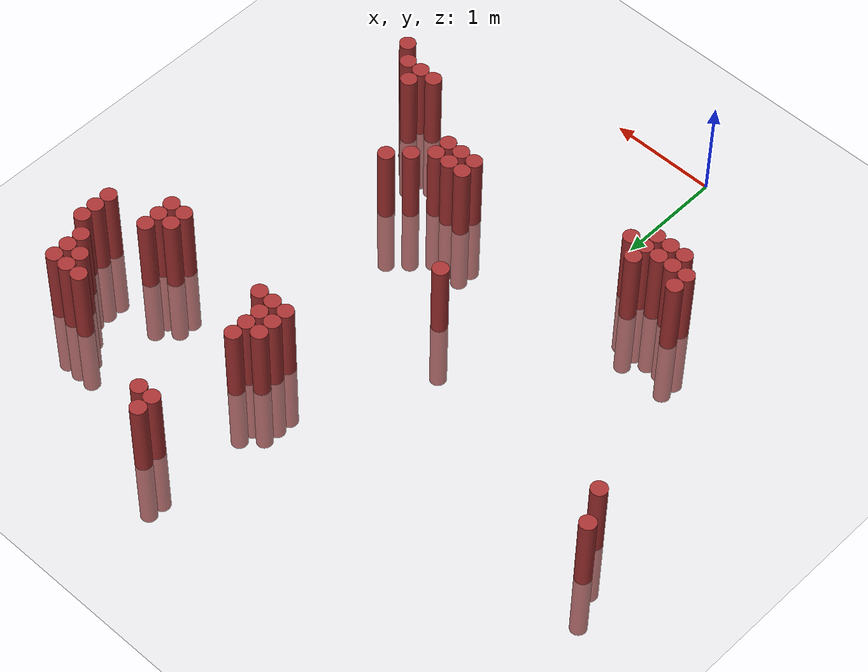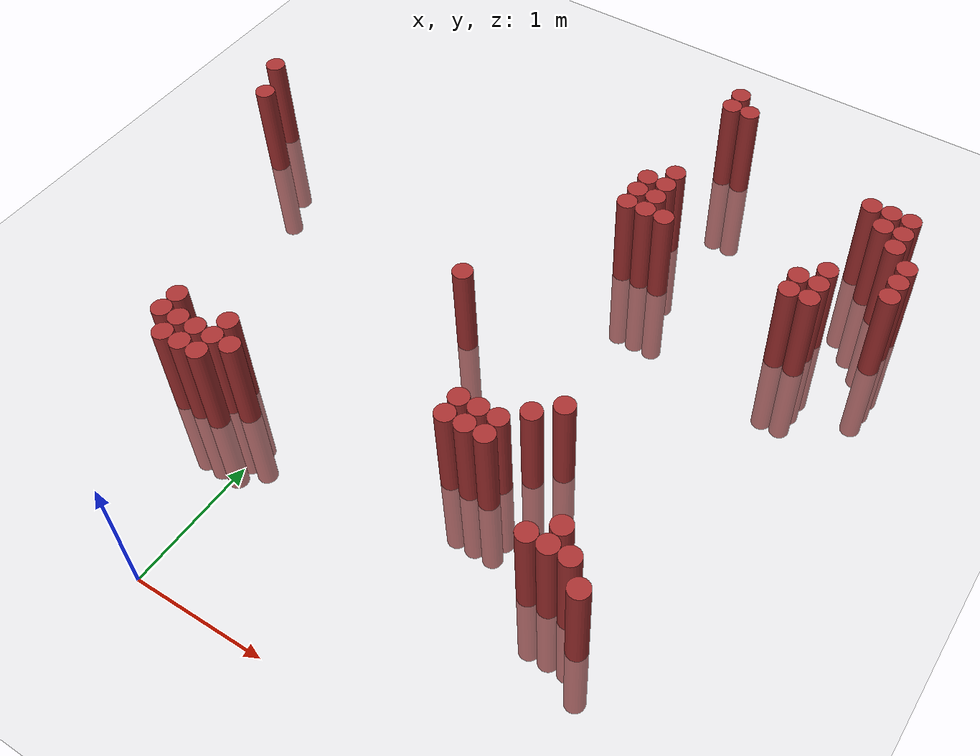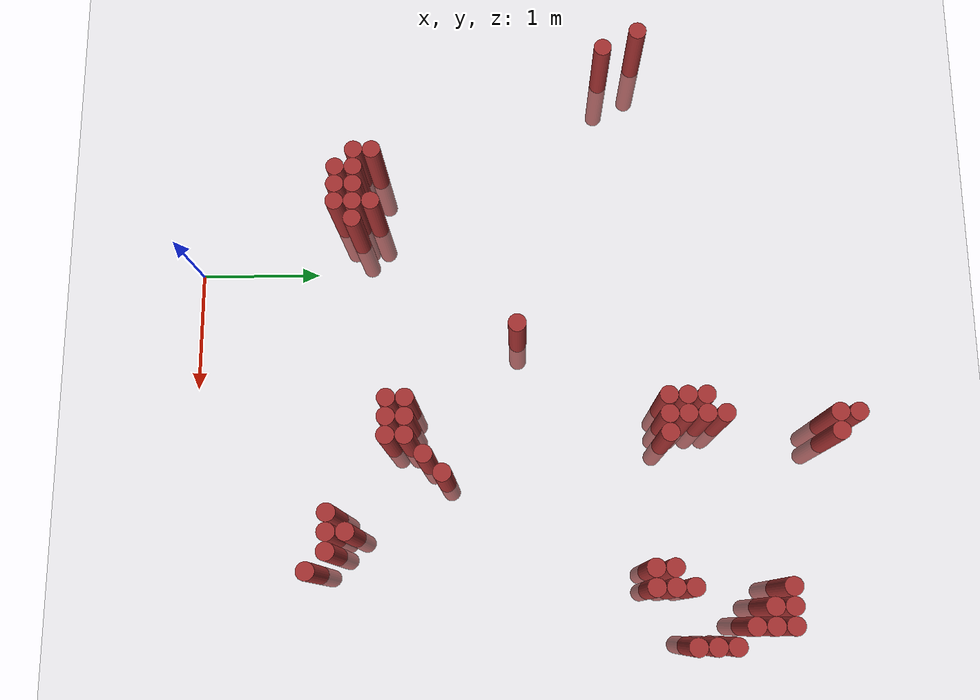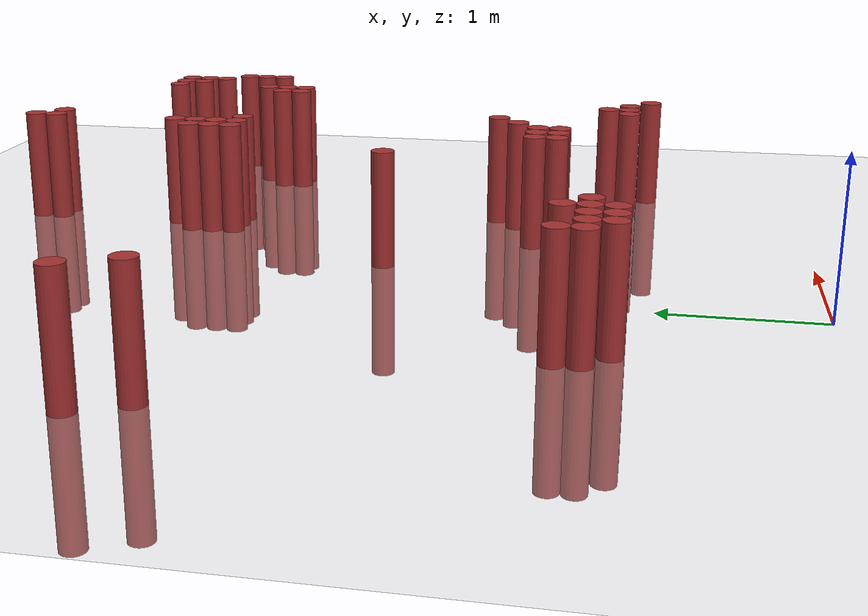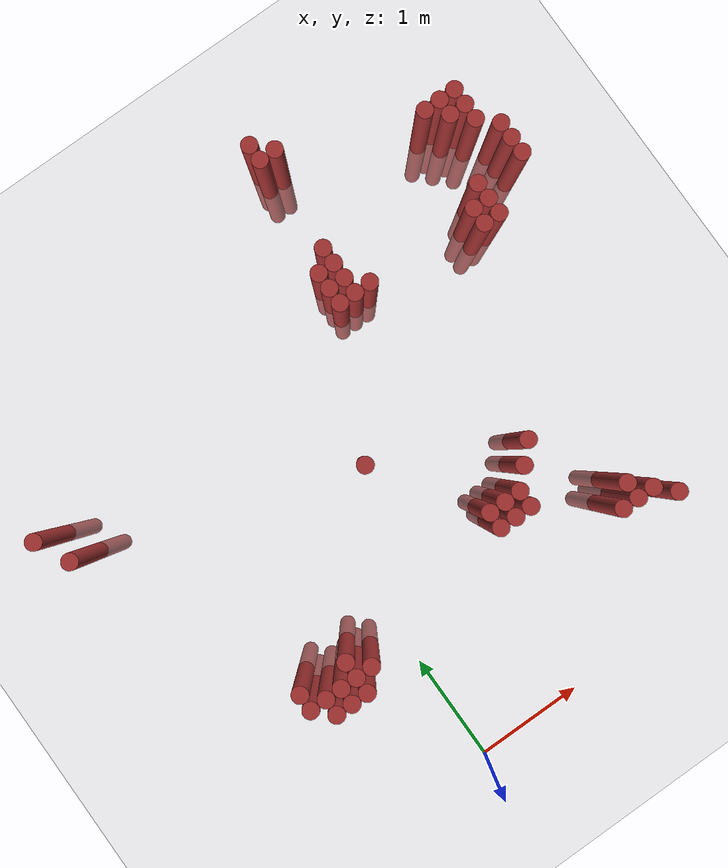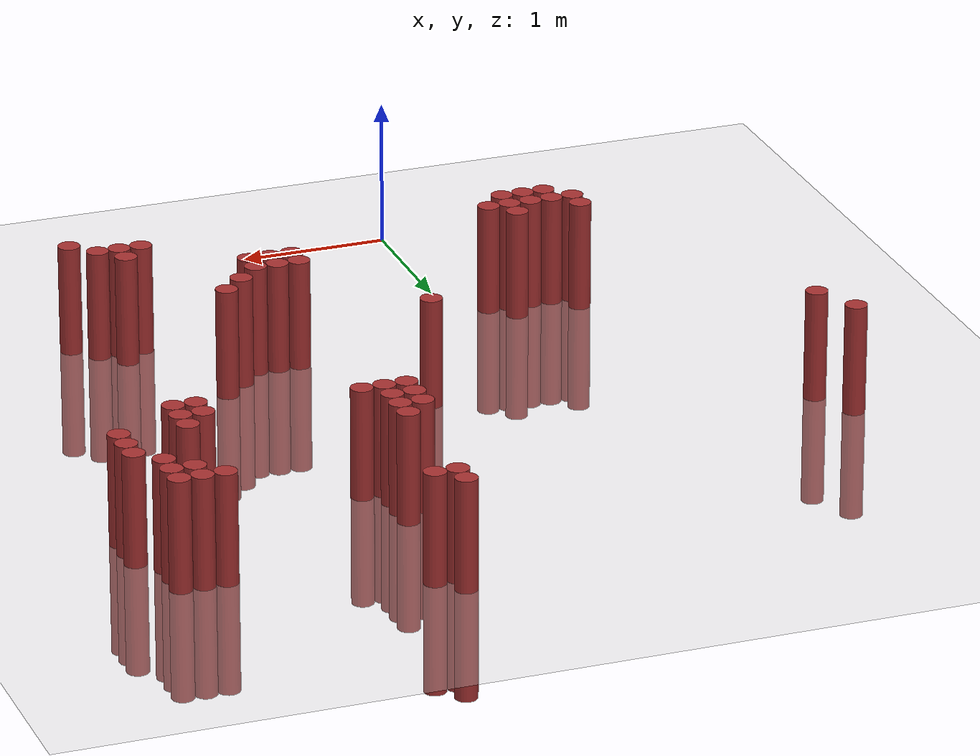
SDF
<sdf version="1.6">
 <world name="default">
  <model name="ground_plane">
   <static>1</static>
   <link name="link">
    <collision name="collision">
     <geometry><plane><normal>0 0 1</normal><size>100 100</size></plane></geometry>
     <surface><friction><ode><mu>100</mu><mu2>50</mu2></ode></friction></surface>
    </collision>
    <visual name="visual">
     <cast_shadows>0</cast_shadows>
     <geometry><plane><normal>0 0 1</normal><size>100 100</size></plane></geometry>
     <material>
      <script><uri>file://media/materials/scripts/gazebo.material</uri><name>Gazebo/Grey</name></script>
     </material>
    </visual>
   </link>
  </model>
  <model name="unit_cylinder_317">
   <static>1</static>
   <pose>-1.925000 3.775000 0.000000 0.000000 0.000000 0.000000</pose>
   <link name="link">
    <inertial>
     <mass>1</mass>
     <inertia><ixx>0.145833</ixx><ixy>0</ixy><ixz>0</ixz><iyy>0.145833</iyy><iyz>0</iyz><izz>0.125</izz></inertia>
    </inertial>
    <collision name="collision">
     <geometry><cylinder><radius>0.075000</radius><length>1.5</length></cylinder></geometry>
    </collision>
    <visual name="visual">
     <geometry><cylinder><radius>0.075000</radius><length>1.5</length></cylinder></geometry>
     <material>
      <ambient>0.648000 0.192000 0.192000 1</ambient>
      <diffuse>0.648000 0.192000 0.192000 1</diffuse>
     </material>
     <material>
      <script><name>Gazebo/Grey</name><uri>file://media/materials/scripts/gazebo.material</uri></script>
     </material>
    </visual>
   </link>
  </model>
  <model name="unit_cylinder_320">
   <static>1</static>
   <pose>-1.775000 3.475000 0.000000 0.000000 0.000000 0.000000</pose>
   <link name="link">
    <inertial>
     <mass>1</mass>
     <inertia><ixx>0.145833</ixx><ixy>0</ixy><ixz>0</ixz><iyy>0.145833</iyy><iyz>0</iyz><izz>0.125</izz></inertia>
    </inertial>
    <collision name="collision">
     <geometry><cylinder><radius>0.075000</radius><length>1.5</length></cylinder></geometry>
    </collision>
    <visual name="visual">
     <geometry><cylinder><radius>0.075000</radius><length>1.5</length></cylinder></geometry>
     <material>
      <ambient>0.648000 0.192000 0.192000 1</ambient>
      <diffuse>0.648000 0.192000 0.192000 1</diffuse>
     </material>
     <material>
      <script><name>Gazebo/Grey</name><uri>file://media/materials/scripts/gazebo.material</uri></script>
     </material>
    </visual>
   </link>
  </model>
  <model name="unit_cylinder_334">
   <static>1</static>
   <pose>-0.875000 1.375000 0.000000 0.000000 0.000000 0.000000</pose>
   <link name="link">
    <inertial>
     <mass>1</mass>
     <inertia><ixx>0.145833</ixx><ixy>0</ixy><ixz>0</ixz><iyy>0.145833</iyy><iyz>0</iyz><izz>0.125</izz></inertia>
    </inertial>
    <collision name="collision">
     <geometry><cylinder><radius>0.075000</radius><length>1.5</length></cylinder></geometry>
    </collision>
    <visual name="visual">
     <geometry><cylinder><radius>0.075000</radius><length>1.5</length></cylinder></geometry>
     <material>
      <ambient>0.648000 0.192000 0.192000 1</ambient>
      <diffuse>0.648000 0.192000 0.192000 1</diffuse>
     </material>
     <material>
      <script><name>Gazebo/Grey</name><uri>file://media/materials/scripts/gazebo.material</uri></script>
     </material>
    </visual>
   </link>
  </model>
  <model name="unit_cylinder_335">
   <static>1</static>
   <pose>-0.875000 1.525000 0.000000 0.000000 0.000000 0.000000</pose>
   <link name="link">
    <inertial>
     <mass>1</mass>
     <inertia><ixx>0.145833</ixx><ixy>0</ixy><ixz>0</ixz><iyy>0.145833</iyy><iyz>0</iyz><izz>0.125</izz></inertia>
    </inertial>
    <collision name="collision">
     <geometry><cylinder><radius>0.075000</radius><length>1.5</length></cylinder></geometry>
    </collision>
    <visual name="visual">
     <geometry><cylinder><radius>0.075000</radius><length>1.5</length></cylinder></geometry>
     <material>
      <ambient>0.648000 0.192000 0.192000 1</ambient>
      <diffuse>0.648000 0.192000 0.192000 1</diffuse>
     </material>
     <material>
      <script><name>Gazebo/Grey</name><uri>file://media/materials/scripts/gazebo.material</uri></script>
     </material>
    </visual>
   </link>
  </model>
  <model name="unit_cylinder_340">
   <static>1</static>
   <pose>-0.725000 1.225000 0.000000 0.000000 0.000000 0.000000</pose>
   <link name="link">
    <inertial>
     <mass>1</mass>
     <inertia><ixx>0.145833</ixx><ixy>0</ixy><ixz>0</ixz><iyy>0.145833</iyy><iyz>0</iyz><izz>0.125</izz></inertia>
    </inertial>
    <collision name="collision">
     <geometry><cylinder><radius>0.075000</radius><length>1.5</length></cylinder></geometry>
    </collision>
    <visual name="visual">
     <geometry><cylinder><radius>0.075000</radius><length>1.5</length></cylinder></geometry>
     <material>
      <ambient>0.648000 0.192000 0.192000 1</ambient>
      <diffuse>0.648000 0.192000 0.192000 1</diffuse>
     </material>
     <material>
      <script><name>Gazebo/Grey</name><uri>file://media/materials/scripts/gazebo.material</uri></script>
     </material>
    </visual>
   </link>
  </model>
  <model name="unit_cylinder_341">
   <static>1</static>
   <pose>-0.725000 1.375000 0.000000 0.000000 0.000000 0.000000</pose>
   <link name="link">
    <inertial>
     <mass>1</mass>
     <inertia><ixx>0.145833</ixx><ixy>0</ixy><ixz>0</ixz><iyy>0.145833</iyy><iyz>0</iyz><izz>0.125</izz></inertia>
    </inertial>
    <collision name="collision">
     <geometry><cylinder><radius>0.075000</radius><length>1.5</length></cylinder></geometry>
    </collision>
    <visual name="visual">
     <geometry><cylinder><radius>0.075000</radius><length>1.5</length></cylinder></geometry>
     <material>
      <ambient>0.648000 0.192000 0.192000 1</ambient>
      <diffuse>0.648000 0.192000 0.192000 1</diffuse>
     </material>
     <material>
      <script><name>Gazebo/Grey</name><uri>file://media/materials/scripts/gazebo.material</uri></script>
     </material>
    </visual>
   </link>
  </model>
  <model name="unit_cylinder_345">
   <static>1</static>
   <pose>-0.575000 1.225000 0.000000 0.000000 0.000000 0.000000</pose>
   <link name="link">
    <inertial>
     <mass>1</mass>
     <inertia><ixx>0.145833</ixx><ixy>0</ixy><ixz>0</ixz><iyy>0.145833</iyy><iyz>0</iyz><izz>0.125</izz></inertia>
    </inertial>
    <collision name="collision">
     <geometry><cylinder><radius>0.075000</radius><length>1.5</length></cylinder></geometry>
    </collision>
    <visual name="visual">
     <geometry><cylinder><radius>0.075000</radius><length>1.5</length></cylinder></geometry>
     <material>
      <ambient>0.648000 0.192000 0.192000 1</ambient>
      <diffuse>0.648000 0.192000 0.192000 1</diffuse>
     </material>
     <material>
      <script><name>Gazebo/Grey</name><uri>file://media/materials/scripts/gazebo.material</uri></script>
     </material>
    </visual>
   </link>
  </model>
  <model name="unit_cylinder_346">
   <static>1</static>
   <pose>-0.575000 1.375000 0.000000 0.000000 0.000000 0.000000</pose>
   <link name="link">
    <inertial>
     <mass>1</mass>
     <inertia><ixx>0.145833</ixx><ixy>0</ixy><ixz>0</ixz><iyy>0.145833</iyy><iyz>0</iyz><izz>0.125</izz></inertia>
    </inertial>
    <collision name="collision">
     <geometry><cylinder><radius>0.075000</radius><length>1.5</length></cylinder></geometry>
    </collision>
    <visual name="visual">
     <geometry><cylinder><radius>0.075000</radius><length>1.5</length></cylinder></geometry>
     <material>
      <ambient>0.648000 0.192000 0.192000 1</ambient>
      <diffuse>0.648000 0.192000 0.192000 1</diffuse>
     </material>
     <material>
      <script><name>Gazebo/Grey</name><uri>file://media/materials/scripts/gazebo.material</uri></script>
     </material>
    </visual>
   </link>
  </model>
  <model name="unit_cylinder_349">
   <static>1</static>
   <pose>-0.425000 1.225000 0.000000 0.000000 0.000000 0.000000</pose>
   <link name="link">
    <inertial>
     <mass>1</mass>
     <inertia><ixx>0.145833</ixx><ixy>0</ixy><ixz>0</ixz><iyy>0.145833</iyy><iyz>0</iyz><izz>0.125</izz></inertia>
    </inertial>
    <collision name="collision">
     <geometry><cylinder><radius>0.075000</radius><length>1.5</length></cylinder></geometry>
    </collision>
    <visual name="visual">
     <geometry><cylinder><radius>0.075000</radius><length>1.5</length></cylinder></geometry>
     <material>
      <ambient>0.648000 0.192000 0.192000 1</ambient>
      <diffuse>0.648000 0.192000 0.192000 1</diffuse>
     </material>
     <material>
      <script><name>Gazebo/Grey</name><uri>file://media/materials/scripts/gazebo.material</uri></script>
     </material>
    </visual>
   </link>
  </model>
  <model name="unit_cylinder_350">
   <static>1</static>
   <pose>-0.425000 1.375000 0.000000 0.000000 0.000000 0.000000</pose>
   <link name="link">
    <inertial>
     <mass>1</mass>
     <inertia><ixx>0.145833</ixx><ixy>0</ixy><ixz>0</ixz><iyy>0.145833</iyy><iyz>0</iyz><izz>0.125</izz></inertia>
    </inertial>
    <collision name="collision">
     <geometry><cylinder><radius>0.075000</radius><length>1.5</length></cylinder></geometry>
    </collision>
    <visual name="visual">
     <geometry><cylinder><radius>0.075000</radius><length>1.5</length></cylinder></geometry>
     <material>
      <ambient>0.648000 0.192000 0.192000 1</ambient>
      <diffuse>0.648000 0.192000 0.192000 1</diffuse>
     </material>
     <material>
      <script><name>Gazebo/Grey</name><uri>file://media/materials/scripts/gazebo.material</uri></script>
     </material>
    </visual>
   </link>
  </model>
  <model name="unit_cylinder_351">
   <static>1</static>
   <pose>-0.425000 1.525000 0.000000 0.000000 0.000000 0.000000</pose>
   <link name="link">
    <inertial>
     <mass>1</mass>
     <inertia><ixx>0.145833</ixx><ixy>0</ixy><ixz>0</ixz><iyy>0.145833</iyy><iyz>0</iyz><izz>0.125</izz></inertia>
    </inertial>
    <collision name="collision">
     <geometry><cylinder><radius>0.075000</radius><length>1.5</length></cylinder></geometry>
    </collision>
    <visual name="visual">
     <geometry><cylinder><radius>0.075000</radius><length>1.5</length></cylinder></geometry>
     <material>
      <ambient>0.648000 0.192000 0.192000 1</ambient>
      <diffuse>0.648000 0.192000 0.192000 1</diffuse>
     </material>
     <material>
      <script><name>Gazebo/Grey</name><uri>file://media/materials/scripts/gazebo.material</uri></script>
     </material>
    </visual>
   </link>
  </model>
  <model name="unit_cylinder_352">
   <static>1</static>
   <pose>-0.275000 1.375000 0.000000 0.000000 0.000000 0.000000</pose>
   <link name="link">
    <inertial>
     <mass>1</mass>
     <inertia><ixx>0.145833</ixx><ixy>0</ixy><ixz>0</ixz><iyy>0.145833</iyy><iyz>0</iyz><izz>0.125</izz></inertia>
    </inertial>
    <collision name="collision">
     <geometry><cylinder><radius>0.075000</radius><length>1.5</length></cylinder></geometry>
    </collision>
    <visual name="visual">
     <geometry><cylinder><radius>0.075000</radius><length>1.5</length></cylinder></geometry>
     <material>
      <ambient>0.648000 0.192000 0.192000 1</ambient>
      <diffuse>0.648000 0.192000 0.192000 1</diffuse>
     </material>
     <material>
      <script><name>Gazebo/Grey</name><uri>file://media/materials/scripts/gazebo.material</uri></script>
     </material>
    </visual>
   </link>
  </model>
  <model name="unit_cylinder_355">
   <static>1</static>
   <pose>0.625000 2.725000 0.000000 0.000000 0.000000 0.000000</pose>
   <link name="link">
    <inertial>
     <mass>1</mass>
     <inertia><ixx>0.145833</ixx><ixy>0</ixy><ixz>0</ixz><iyy>0.145833</iyy><iyz>0</iyz><izz>0.125</izz></inertia>
    </inertial>
    <collision name="collision">
     <geometry><cylinder><radius>0.075000</radius><length>1.5</length></cylinder></geometry>
    </collision>
    <visual name="visual">
     <geometry><cylinder><radius>0.075000</radius><length>1.5</length></cylinder></geometry>
     <material>
      <ambient>0.648000 0.192000 0.192000 1</ambient>
      <diffuse>0.648000 0.192000 0.192000 1</diffuse>
     </material>
     <material>
      <script><name>Gazebo/Grey</name><uri>file://media/materials/scripts/gazebo.material</uri></script>
     </material>
    </visual>
   </link>
  </model>
  <model name="unit_cylinder_356">
   <static>1</static>
   <pose>1.225000 1.675000 0.000000 0.000000 0.000000 0.000000</pose>
   <link name="link">
    <inertial>
     <mass>1</mass>
     <inertia><ixx>0.145833</ixx><ixy>0</ixy><ixz>0</ixz><iyy>0.145833</iyy><iyz>0</iyz><izz>0.125</izz></inertia>
    </inertial>
    <collision name="collision">
     <geometry><cylinder><radius>0.075000</radius><length>1.5</length></cylinder></geometry>
    </collision>
    <visual name="visual">
     <geometry><cylinder><radius>0.075000</radius><length>1.5</length></cylinder></geometry>
     <material>
      <ambient>0.648000 0.192000 0.192000 1</ambient>
      <diffuse>0.648000 0.192000 0.192000 1</diffuse>
     </material>
     <material>
      <script><name>Gazebo/Grey</name><uri>file://media/materials/scripts/gazebo.material</uri></script>
     </material>
    </visual>
   </link>
  </model>
  <model name="unit_cylinder_357">
   <static>1</static>
   <pose>1.225000 1.825000 0.000000 0.000000 0.000000 0.000000</pose>
   <link name="link">
    <inertial>
     <mass>1</mass>
     <inertia><ixx>0.145833</ixx><ixy>0</ixy><ixz>0</ixz><iyy>0.145833</iyy><iyz>0</iyz><izz>0.125</izz></inertia>
    </inertial>
    <collision name="collision">
     <geometry><cylinder><radius>0.075000</radius><length>1.5</length></cylinder></geometry>
    </collision>
    <visual name="visual">
     <geometry><cylinder><radius>0.075000</radius><length>1.5</length></cylinder></geometry>
     <material>
      <ambient>0.648000 0.192000 0.192000 1</ambient>
      <diffuse>0.648000 0.192000 0.192000 1</diffuse>
     </material>
     <material>
      <script><name>Gazebo/Grey</name><uri>file://media/materials/scripts/gazebo.material</uri></script>
     </material>
    </visual>
   </link>
  </model>
  <model name="unit_cylinder_358">
   <static>1</static>
   <pose>1.225000 3.925000 0.000000 0.000000 0.000000 0.000000</pose>
   <link name="link">
    <inertial>
     <mass>1</mass>
     <inertia><ixx>0.145833</ixx><ixy>0</ixy><ixz>0</ixz><iyy>0.145833</iyy><iyz>0</iyz><izz>0.125</izz></inertia>
    </inertial>
    <collision name="collision">
     <geometry><cylinder><radius>0.075000</radius><length>1.5</length></cylinder></geometry>
    </collision>
    <visual name="visual">
     <geometry><cylinder><radius>0.075000</radius><length>1.5</length></cylinder></geometry>
     <material>
      <ambient>0.648000 0.192000 0.192000 1</ambient>
      <diffuse>0.648000 0.192000 0.192000 1</diffuse>
     </material>
     <material>
      <script><name>Gazebo/Grey</name><uri>file://media/materials/scripts/gazebo.material</uri></script>
     </material>
    </visual>
   </link>
  </model>
  <model name="unit_cylinder_359">
   <static>1</static>
   <pose>1.225000 4.075000 0.000000 0.000000 0.000000 0.000000</pose>
   <link name="link">
    <inertial>
     <mass>1</mass>
     <inertia><ixx>0.145833</ixx><ixy>0</ixy><ixz>0</ixz><iyy>0.145833</iyy><iyz>0</iyz><izz>0.125</izz></inertia>
    </inertial>
    <collision name="collision">
     <geometry><cylinder><radius>0.075000</radius><length>1.5</length></cylinder></geometry>
    </collision>
    <visual name="visual">
     <geometry><cylinder><radius>0.075000</radius><length>1.5</length></cylinder></geometry>
     <material>
      <ambient>0.648000 0.192000 0.192000 1</ambient>
      <diffuse>0.648000 0.192000 0.192000 1</diffuse>
     </material>
     <material>
      <script><name>Gazebo/Grey</name><uri>file://media/materials/scripts/gazebo.material</uri></script>
     </material>
    </visual>
   </link>
  </model>
  <model name="unit_cylinder_360">
   <static>1</static>
   <pose>1.225000 4.225000 0.000000 0.000000 0.000000 0.000000</pose>
   <link name="link">
    <inertial>
     <mass>1</mass>
     <inertia><ixx>0.145833</ixx><ixy>0</ixy><ixz>0</ixz><iyy>0.145833</iyy><iyz>0</iyz><izz>0.125</izz></inertia>
    </inertial>
    <collision name="collision">
     <geometry><cylinder><radius>0.075000</radius><length>1.5</length></cylinder></geometry>
    </collision>
    <visual name="visual">
     <geometry><cylinder><radius>0.075000</radius><length>1.5</length></cylinder></geometry>
     <material>
      <ambient>0.648000 0.192000 0.192000 1</ambient>
      <diffuse>0.648000 0.192000 0.192000 1</diffuse>
     </material>
     <material>
      <script><name>Gazebo/Grey</name><uri>file://media/materials/scripts/gazebo.material</uri></script>
     </material>
    </visual>
   </link>
  </model>
  <model name="unit_cylinder_361">
   <static>1</static>
   <pose>1.375000 1.675000 0.000000 0.000000 0.000000 0.000000</pose>
   <link name="link">
    <inertial>
     <mass>1</mass>
     <inertia><ixx>0.145833</ixx><ixy>0</ixy><ixz>0</ixz><iyy>0.145833</iyy><iyz>0</iyz><izz>0.125</izz></inertia>
    </inertial>
    <collision name="collision">
     <geometry><cylinder><radius>0.075000</radius><length>1.5</length></cylinder></geometry>
    </collision>
    <visual name="visual">
     <geometry><cylinder><radius>0.075000</radius><length>1.5</length></cylinder></geometry>
     <material>
      <ambient>0.648000 0.192000 0.192000 1</ambient>
      <diffuse>0.648000 0.192000 0.192000 1</diffuse>
     </material>
     <material>
      <script><name>Gazebo/Grey</name><uri>file://media/materials/scripts/gazebo.material</uri></script>
     </material>
    </visual>
   </link>
  </model>
  <model name="unit_cylinder_362">
   <static>1</static>
   <pose>1.375000 1.825000 0.000000 0.000000 0.000000 0.000000</pose>
   <link name="link">
    <inertial>
     <mass>1</mass>
     <inertia><ixx>0.145833</ixx><ixy>0</ixy><ixz>0</ixz><iyy>0.145833</iyy><iyz>0</iyz><izz>0.125</izz></inertia>
    </inertial>
    <collision name="collision">
     <geometry><cylinder><radius>0.075000</radius><length>1.5</length></cylinder></geometry>
    </collision>
    <visual name="visual">
     <geometry><cylinder><radius>0.075000</radius><length>1.5</length></cylinder></geometry>
     <material>
      <ambient>0.648000 0.192000 0.192000 1</ambient>
      <diffuse>0.648000 0.192000 0.192000 1</diffuse>
     </material>
     <material>
      <script><name>Gazebo/Grey</name><uri>file://media/materials/scripts/gazebo.material</uri></script>
     </material>
    </visual>
   </link>
  </model>
  <model name="unit_cylinder_363">
   <static>1</static>
   <pose>1.375000 3.925000 0.000000 0.000000 0.000000 0.000000</pose>
   <link name="link">
    <inertial>
     <mass>1</mass>
     <inertia><ixx>0.145833</ixx><ixy>0</ixy><ixz>0</ixz><iyy>0.145833</iyy><iyz>0</iyz><izz>0.125</izz></inertia>
    </inertial>
    <collision name="collision">
     <geometry><cylinder><radius>0.075000</radius><length>1.5</length></cylinder></geometry>
    </collision>
    <visual name="visual">
     <geometry><cylinder><radius>0.075000</radius><length>1.5</length></cylinder></geometry>
     <material>
      <ambient>0.648000 0.192000 0.192000 1</ambient>
      <diffuse>0.648000 0.192000 0.192000 1</diffuse>
     </material>
     <material>
      <script><name>Gazebo/Grey</name><uri>file://media/materials/scripts/gazebo.material</uri></script>
     </material>
    </visual>
   </link>
  </model>
  <model name="unit_cylinder_364">
   <static>1</static>
   <pose>1.375000 4.075000 0.000000 0.000000 0.000000 0.000000</pose>
   <link name="link">
    <inertial>
     <mass>1</mass>
     <inertia><ixx>0.145833</ixx><ixy>0</ixy><ixz>0</ixz><iyy>0.145833</iyy><iyz>0</iyz><izz>0.125</izz></inertia>
    </inertial>
    <collision name="collision">
     <geometry><cylinder><radius>0.075000</radius><length>1.5</length></cylinder></geometry>
    </collision>
    <visual name="visual">
     <geometry><cylinder><radius>0.075000</radius><length>1.5</length></cylinder></geometry>
     <material>
      <ambient>0.648000 0.192000 0.192000 1</ambient>
      <diffuse>0.648000 0.192000 0.192000 1</diffuse>
     </material>
     <material>
      <script><name>Gazebo/Grey</name><uri>file://media/materials/scripts/gazebo.material</uri></script>
     </material>
    </visual>
   </link>
  </model>
  <model name="unit_cylinder_365">
   <static>1</static>
   <pose>1.375000 4.225000 0.000000 0.000000 0.000000 0.000000</pose>
   <link name="link">
    <inertial>
     <mass>1</mass>
     <inertia><ixx>0.145833</ixx><ixy>0</ixy><ixz>0</ixz><iyy>0.145833</iyy><iyz>0</iyz><izz>0.125</izz></inertia>
    </inertial>
    <collision name="collision">
     <geometry><cylinder><radius>0.075000</radius><length>1.5</length></cylinder></geometry>
    </collision>
    <visual name="visual">
     <geometry><cylinder><radius>0.075000</radius><length>1.5</length></cylinder></geometry>
     <material>
      <ambient>0.648000 0.192000 0.192000 1</ambient>
      <diffuse>0.648000 0.192000 0.192000 1</diffuse>
     </material>
     <material>
      <script><name>Gazebo/Grey</name><uri>file://media/materials/scripts/gazebo.material</uri></script>
     </material>
    </visual>
   </link>
  </model>
  <model name="unit_cylinder_366">
   <static>1</static>
   <pose>1.375000 4.375000 0.000000 0.000000 0.000000 0.000000</pose>
   <link name="link">
    <inertial>
     <mass>1</mass>
     <inertia><ixx>0.145833</ixx><ixy>0</ixy><ixz>0</ixz><iyy>0.145833</iyy><iyz>0</iyz><izz>0.125</izz></inertia>
    </inertial>
    <collision name="collision">
     <geometry><cylinder><radius>0.075000</radius><length>1.5</length></cylinder></geometry>
    </collision>
    <visual name="visual">
     <geometry><cylinder><radius>0.075000</radius><length>1.5</length></cylinder></geometry>
     <material>
      <ambient>0.648000 0.192000 0.192000 1</ambient>
      <diffuse>0.648000 0.192000 0.192000 1</diffuse>
     </material>
     <material>
      <script><name>Gazebo/Grey</name><uri>file://media/materials/scripts/gazebo.material</uri></script>
     </material>
    </visual>
   </link>
  </model>
  <model name="unit_cylinder_367">
   <static>1</static>
   <pose>1.375000 5.275000 0.000000 0.000000 0.000000 0.000000</pose>
   <link name="link">
    <inertial>
     <mass>1</mass>
     <inertia><ixx>0.145833</ixx><ixy>0</ixy><ixz>0</ixz><iyy>0.145833</iyy><iyz>0</iyz><izz>0.125</izz></inertia>
    </inertial>
    <collision name="collision">
     <geometry><cylinder><radius>0.075000</radius><length>1.5</length></cylinder></geometry>
    </collision>
    <visual name="visual">
     <geometry><cylinder><radius>0.075000</radius><length>1.5</length></cylinder></geometry>
     <material>
      <ambient>0.648000 0.192000 0.192000 1</ambient>
      <diffuse>0.648000 0.192000 0.192000 1</diffuse>
     </material>
     <material>
      <script><name>Gazebo/Grey</name><uri>file://media/materials/scripts/gazebo.material</uri></script>
     </material>
    </visual>
   </link>
  </model>
  <model name="unit_cylinder_368">
   <static>1</static>
   <pose>1.375000 5.425000 0.000000 0.000000 0.000000 0.000000</pose>
   <link name="link">
    <inertial>
     <mass>1</mass>
     <inertia><ixx>0.145833</ixx><ixy>0</ixy><ixz>0</ixz><iyy>0.145833</iyy><iyz>0</iyz><izz>0.125</izz></inertia>
    </inertial>
    <collision name="collision">
     <geometry><cylinder><radius>0.075000</radius><length>1.5</length></cylinder></geometry>
    </collision>
    <visual name="visual">
     <geometry><cylinder><radius>0.075000</radius><length>1.5</length></cylinder></geometry>
     <material>
      <ambient>0.648000 0.192000 0.192000 1</ambient>
      <diffuse>0.648000 0.192000 0.192000 1</diffuse>
     </material>
     <material>
      <script><name>Gazebo/Grey</name><uri>file://media/materials/scripts/gazebo.material</uri></script>
     </material>
    </visual>
   </link>
  </model>
  <model name="unit_cylinder_369">
   <static>1</static>
   <pose>1.525000 1.675000 0.000000 0.000000 0.000000 0.000000</pose>
   <link name="link">
    <inertial>
     <mass>1</mass>
     <inertia><ixx>0.145833</ixx><ixy>0</ixy><ixz>0</ixz><iyy>0.145833</iyy><iyz>0</iyz><izz>0.125</izz></inertia>
    </inertial>
    <collision name="collision">
     <geometry><cylinder><radius>0.075000</radius><length>1.5</length></cylinder></geometry>
    </collision>
    <visual name="visual">
     <geometry><cylinder><radius>0.075000</radius><length>1.5</length></cylinder></geometry>
     <material>
      <ambient>0.648000 0.192000 0.192000 1</ambient>
      <diffuse>0.648000 0.192000 0.192000 1</diffuse>
     </material>
     <material>
      <script><name>Gazebo/Grey</name><uri>file://media/materials/scripts/gazebo.material</uri></script>
     </material>
    </visual>
   </link>
  </model>
  <model name="unit_cylinder_370">
   <static>1</static>
   <pose>1.525000 1.825000 0.000000 0.000000 0.000000 0.000000</pose>
   <link name="link">
    <inertial>
     <mass>1</mass>
     <inertia><ixx>0.145833</ixx><ixy>0</ixy><ixz>0</ixz><iyy>0.145833</iyy><iyz>0</iyz><izz>0.125</izz></inertia>
    </inertial>
    <collision name="collision">
     <geometry><cylinder><radius>0.075000</radius><length>1.5</length></cylinder></geometry>
    </collision>
    <visual name="visual">
     <geometry><cylinder><radius>0.075000</radius><length>1.5</length></cylinder></geometry>
     <material>
      <ambient>0.648000 0.192000 0.192000 1</ambient>
      <diffuse>0.648000 0.192000 0.192000 1</diffuse>
     </material>
     <material>
      <script><name>Gazebo/Grey</name><uri>file://media/materials/scripts/gazebo.material</uri></script>
     </material>
    </visual>
   </link>
  </model>
  <model name="unit_cylinder_371">
   <static>1</static>
   <pose>1.525000 3.925000 0.000000 0.000000 0.000000 0.000000</pose>
   <link name="link">
    <inertial>
     <mass>1</mass>
     <inertia><ixx>0.145833</ixx><ixy>0</ixy><ixz>0</ixz><iyy>0.145833</iyy><iyz>0</iyz><izz>0.125</izz></inertia>
    </inertial>
    <collision name="collision">
     <geometry><cylinder><radius>0.075000</radius><length>1.5</length></cylinder></geometry>
    </collision>
    <visual name="visual">
     <geometry><cylinder><radius>0.075000</radius><length>1.5</length></cylinder></geometry>
     <material>
      <ambient>0.648000 0.192000 0.192000 1</ambient>
      <diffuse>0.648000 0.192000 0.192000 1</diffuse>
     </material>
     <material>
      <script><name>Gazebo/Grey</name><uri>file://media/materials/scripts/gazebo.material</uri></script>
     </material>
    </visual>
   </link>
  </model>
  <model name="unit_cylinder_372">
   <static>1</static>
   <pose>1.525000 5.275000 0.000000 0.000000 0.000000 0.000000</pose>
   <link name="link">
    <inertial>
     <mass>1</mass>
     <inertia><ixx>0.145833</ixx><ixy>0</ixy><ixz>0</ixz><iyy>0.145833</iyy><iyz>0</iyz><izz>0.125</izz></inertia>
    </inertial>
    <collision name="collision">
     <geometry><cylinder><radius>0.075000</radius><length>1.5</length></cylinder></geometry>
    </collision>
    <visual name="visual">
     <geometry><cylinder><radius>0.075000</radius><length>1.5</length></cylinder></geometry>
     <material>
      <ambient>0.648000 0.192000 0.192000 1</ambient>
      <diffuse>0.648000 0.192000 0.192000 1</diffuse>
     </material>
     <material>
      <script><name>Gazebo/Grey</name><uri>file://media/materials/scripts/gazebo.material</uri></script>
     </material>
    </visual>
   </link>
  </model>
  <model name="unit_cylinder_373">
   <static>1</static>
   <pose>1.675000 1.975000 0.000000 0.000000 0.000000 0.000000</pose>
   <link name="link">
    <inertial>
     <mass>1</mass>
     <inertia><ixx>0.145833</ixx><ixy>0</ixy><ixz>0</ixz><iyy>0.145833</iyy><iyz>0</iyz><izz>0.125</izz></inertia>
    </inertial>
    <collision name="collision">
     <geometry><cylinder><radius>0.075000</radius><length>1.5</length></cylinder></geometry>
    </collision>
    <visual name="visual">
     <geometry><cylinder><radius>0.075000</radius><length>1.5</length></cylinder></geometry>
     <material>
      <ambient>0.648000 0.192000 0.192000 1</ambient>
      <diffuse>0.648000 0.192000 0.192000 1</diffuse>
     </material>
     <material>
      <script><name>Gazebo/Grey</name><uri>file://media/materials/scripts/gazebo.material</uri></script>
     </material>
    </visual>
   </link>
  </model>
  <model name="unit_cylinder_375">
   <static>1</static>
   <pose>1.825000 2.125000 0.000000 0.000000 0.000000 0.000000</pose>
   <link name="link">
    <inertial>
     <mass>1</mass>
     <inertia><ixx>0.145833</ixx><ixy>0</ixy><ixz>0</ixz><iyy>0.145833</iyy><iyz>0</iyz><izz>0.125</izz></inertia>
    </inertial>
    <collision name="collision">
     <geometry><cylinder><radius>0.075000</radius><length>1.5</length></cylinder></geometry>
    </collision>
    <visual name="visual">
     <geometry><cylinder><radius>0.075000</radius><length>1.5</length></cylinder></geometry>
     <material>
      <ambient>0.648000 0.192000 0.192000 1</ambient>
      <diffuse>0.648000 0.192000 0.192000 1</diffuse>
     </material>
     <material>
      <script><name>Gazebo/Grey</name><uri>file://media/materials/scripts/gazebo.material</uri></script>
     </material>
    </visual>
   </link>
  </model>
  <model name="unit_cylinder_378">
   <static>1</static>
   <pose>2.125000 1.225000 0.000000 0.000000 0.000000 0.000000</pose>
   <link name="link">
    <inertial>
     <mass>1</mass>
     <inertia><ixx>0.145833</ixx><ixy>0</ixy><ixz>0</ixz><iyy>0.145833</iyy><iyz>0</iyz><izz>0.125</izz></inertia>
    </inertial>
    <collision name="collision">
     <geometry><cylinder><radius>0.075000</radius><length>1.5</length></cylinder></geometry>
    </collision>
    <visual name="visual">
     <geometry><cylinder><radius>0.075000</radius><length>1.5</length></cylinder></geometry>
     <material>
      <ambient>0.648000 0.192000 0.192000 1</ambient>
      <diffuse>0.648000 0.192000 0.192000 1</diffuse>
     </material>
     <material>
      <script><name>Gazebo/Grey</name><uri>file://media/materials/scripts/gazebo.material</uri></script>
     </material>
    </visual>
   </link>
  </model>
  <model name="unit_cylinder_381">
   <static>1</static>
   <pose>2.275000 1.225000 0.000000 0.000000 0.000000 0.000000</pose>
   <link name="link">
    <inertial>
     <mass>1</mass>
     <inertia><ixx>0.145833</ixx><ixy>0</ixy><ixz>0</ixz><iyy>0.145833</iyy><iyz>0</iyz><izz>0.125</izz></inertia>
    </inertial>
    <collision name="collision">
     <geometry><cylinder><radius>0.075000</radius><length>1.5</length></cylinder></geometry>
    </collision>
    <visual name="visual">
     <geometry><cylinder><radius>0.075000</radius><length>1.5</length></cylinder></geometry>
     <material>
      <ambient>0.648000 0.192000 0.192000 1</ambient>
      <diffuse>0.648000 0.192000 0.192000 1</diffuse>
     </material>
     <material>
      <script><name>Gazebo/Grey</name><uri>file://media/materials/scripts/gazebo.material</uri></script>
     </material>
    </visual>
   </link>
  </model>
  <model name="unit_cylinder_382">
   <static>1</static>
   <pose>2.275000 1.375000 0.000000 0.000000 0.000000 0.000000</pose>
   <link name="link">
    <inertial>
     <mass>1</mass>
     <inertia><ixx>0.145833</ixx><ixy>0</ixy><ixz>0</ixz><iyy>0.145833</iyy><iyz>0</iyz><izz>0.125</izz></inertia>
    </inertial>
    <collision name="collision">
     <geometry><cylinder><radius>0.075000</radius><length>1.5</length></cylinder></geometry>
    </collision>
    <visual name="visual">
     <geometry><cylinder><radius>0.075000</radius><length>1.5</length></cylinder></geometry>
     <material>
      <ambient>0.648000 0.192000 0.192000 1</ambient>
      <diffuse>0.648000 0.192000 0.192000 1</diffuse>
     </material>
     <material>
      <script><name>Gazebo/Grey</name><uri>file://media/materials/scripts/gazebo.material</uri></script>
     </material>
    </visual>
   </link>
  </model>
  <model name="unit_cylinder_384">
   <static>1</static>
   <pose>2.425000 1.225000 0.000000 0.000000 0.000000 0.000000</pose>
   <link name="link">
    <inertial>
     <mass>1</mass>
     <inertia><ixx>0.145833</ixx><ixy>0</ixy><ixz>0</ixz><iyy>0.145833</iyy><iyz>0</iyz><izz>0.125</izz></inertia>
    </inertial>
    <collision name="collision">
     <geometry><cylinder><radius>0.075000</radius><length>1.5</length></cylinder></geometry>
    </collision>
    <visual name="visual">
     <geometry><cylinder><radius>0.075000</radius><length>1.5</length></cylinder></geometry>
     <material>
      <ambient>0.648000 0.192000 0.192000 1</ambient>
      <diffuse>0.648000 0.192000 0.192000 1</diffuse>
     </material>
     <material>
      <script><name>Gazebo/Grey</name><uri>file://media/materials/scripts/gazebo.material</uri></script>
     </material>
    </visual>
   </link>
  </model>
  <model name="unit_cylinder_386">
   <static>1</static>
   <pose>2.575000 1.075000 0.000000 0.000000 0.000000 0.000000</pose>
   <link name="link">
    <inertial>
     <mass>1</mass>
     <inertia><ixx>0.145833</ixx><ixy>0</ixy><ixz>0</ixz><iyy>0.145833</iyy><iyz>0</iyz><izz>0.125</izz></inertia>
    </inertial>
    <collision name="collision">
     <geometry><cylinder><radius>0.075000</radius><length>1.5</length></cylinder></geometry>
    </collision>
    <visual name="visual">
     <geometry><cylinder><radius>0.075000</radius><length>1.5</length></cylinder></geometry>
     <material>
      <ambient>0.648000 0.192000 0.192000 1</ambient>
      <diffuse>0.648000 0.192000 0.192000 1</diffuse>
     </material>
     <material>
      <script><name>Gazebo/Grey</name><uri>file://media/materials/scripts/gazebo.material</uri></script>
     </material>
    </visual>
   </link>
  </model>
  <model name="unit_cylinder_387">
   <static>1</static>
   <pose>2.575000 3.775000 0.000000 0.000000 0.000000 0.000000</pose>
   <link name="link">
    <inertial>
     <mass>1</mass>
     <inertia><ixx>0.145833</ixx><ixy>0</ixy><ixz>0</ixz><iyy>0.145833</iyy><iyz>0</iyz><izz>0.125</izz></inertia>
    </inertial>
    <collision name="collision">
     <geometry><cylinder><radius>0.075000</radius><length>1.5</length></cylinder></geometry>
    </collision>
    <visual name="visual">
     <geometry><cylinder><radius>0.075000</radius><length>1.5</length></cylinder></geometry>
     <material>
      <ambient>0.648000 0.192000 0.192000 1</ambient>
      <diffuse>0.648000 0.192000 0.192000 1</diffuse>
     </material>
     <material>
      <script><name>Gazebo/Grey</name><uri>file://media/materials/scripts/gazebo.material</uri></script>
     </material>
    </visual>
   </link>
  </model>
  <model name="unit_cylinder_388">
   <static>1</static>
   <pose>2.575000 3.925000 0.000000 0.000000 0.000000 0.000000</pose>
   <link name="link">
    <inertial>
     <mass>1</mass>
     <inertia><ixx>0.145833</ixx><ixy>0</ixy><ixz>0</ixz><iyy>0.145833</iyy><iyz>0</iyz><izz>0.125</izz></inertia>
    </inertial>
    <collision name="collision">
     <geometry><cylinder><radius>0.075000</radius><length>1.5</length></cylinder></geometry>
    </collision>
    <visual name="visual">
     <geometry><cylinder><radius>0.075000</radius><length>1.5</length></cylinder></geometry>
     <material>
      <ambient>0.648000 0.192000 0.192000 1</ambient>
      <diffuse>0.648000 0.192000 0.192000 1</diffuse>
     </material>
     <material>
      <script><name>Gazebo/Grey</name><uri>file://media/materials/scripts/gazebo.material</uri></script>
     </material>
    </visual>
   </link>
  </model>
  <model name="unit_cylinder_391">
   <static>1</static>
   <pose>2.725000 3.775000 0.000000 0.000000 0.000000 0.000000</pose>
   <link name="link">
    <inertial>
     <mass>1</mass>
     <inertia><ixx>0.145833</ixx><ixy>0</ixy><ixz>0</ixz><iyy>0.145833</iyy><iyz>0</iyz><izz>0.125</izz></inertia>
    </inertial>
    <collision name="collision">
     <geometry><cylinder><radius>0.075000</radius><length>1.5</length></cylinder></geometry>
    </collision>
    <visual name="visual">
     <geometry><cylinder><radius>0.075000</radius><length>1.5</length></cylinder></geometry>
     <material>
      <ambient>0.648000 0.192000 0.192000 1</ambient>
      <diffuse>0.648000 0.192000 0.192000 1</diffuse>
     </material>
     <material>
      <script><name>Gazebo/Grey</name><uri>file://media/materials/scripts/gazebo.material</uri></script>
     </material>
    </visual>
   </link>
  </model>
  <model name="unit_cylinder_392">
   <static>1</static>
   <pose>2.725000 3.925000 0.000000 0.000000 0.000000 0.000000</pose>
   <link name="link">
    <inertial>
     <mass>1</mass>
     <inertia><ixx>0.145833</ixx><ixy>0</ixy><ixz>0</ixz><iyy>0.145833</iyy><iyz>0</iyz><izz>0.125</izz></inertia>
    </inertial>
    <collision name="collision">
     <geometry><cylinder><radius>0.075000</radius><length>1.5</length></cylinder></geometry>
    </collision>
    <visual name="visual">
     <geometry><cylinder><radius>0.075000</radius><length>1.5</length></cylinder></geometry>
     <material>
      <ambient>0.648000 0.192000 0.192000 1</ambient>
      <diffuse>0.648000 0.192000 0.192000 1</diffuse>
     </material>
     <material>
      <script><name>Gazebo/Grey</name><uri>file://media/materials/scripts/gazebo.material</uri></script>
     </material>
    </visual>
   </link>
  </model>
  <model name="unit_cylinder_393">
   <static>1</static>
   <pose>2.725000 4.075000 0.000000 0.000000 0.000000 0.000000</pose>
   <link name="link">
    <inertial>
     <mass>1</mass>
     <inertia><ixx>0.145833</ixx><ixy>0</ixy><ixz>0</ixz><iyy>0.145833</iyy><iyz>0</iyz><izz>0.125</izz></inertia>
    </inertial>
    <collision name="collision">
     <geometry><cylinder><radius>0.075000</radius><length>1.5</length></cylinder></geometry>
    </collision>
    <visual name="visual">
     <geometry><cylinder><radius>0.075000</radius><length>1.5</length></cylinder></geometry>
     <material>
      <ambient>0.648000 0.192000 0.192000 1</ambient>
      <diffuse>0.648000 0.192000 0.192000 1</diffuse>
     </material>
     <material>
      <script><name>Gazebo/Grey</name><uri>file://media/materials/scripts/gazebo.material</uri></script>
     </material>
    </visual>
   </link>
  </model>
  <model name="unit_cylinder_394">
   <static>1</static>
   <pose>2.725000 4.825000 0.000000 0.000000 0.000000 0.000000</pose>
   <link name="link">
    <inertial>
     <mass>1</mass>
     <inertia><ixx>0.145833</ixx><ixy>0</ixy><ixz>0</ixz><iyy>0.145833</iyy><iyz>0</iyz><izz>0.125</izz></inertia>
    </inertial>
    <collision name="collision">
     <geometry><cylinder><radius>0.075000</radius><length>1.5</length></cylinder></geometry>
    </collision>
    <visual name="visual">
     <geometry><cylinder><radius>0.075000</radius><length>1.5</length></cylinder></geometry>
     <material>
      <ambient>0.648000 0.192000 0.192000 1</ambient>
      <diffuse>0.648000 0.192000 0.192000 1</diffuse>
     </material>
     <material>
      <script><name>Gazebo/Grey</name><uri>file://media/materials/scripts/gazebo.material</uri></script>
     </material>
    </visual>
   </link>
  </model>
  <model name="unit_cylinder_395">
   <static>1</static>
   <pose>2.875000 4.675000 0.000000 0.000000 0.000000 0.000000</pose>
   <link name="link">
    <inertial>
     <mass>1</mass>
     <inertia><ixx>0.145833</ixx><ixy>0</ixy><ixz>0</ixz><iyy>0.145833</iyy><iyz>0</iyz><izz>0.125</izz></inertia>
    </inertial>
    <collision name="collision">
     <geometry><cylinder><radius>0.075000</radius><length>1.5</length></cylinder></geometry>
    </collision>
    <visual name="visual">
     <geometry><cylinder><radius>0.075000</radius><length>1.5</length></cylinder></geometry>
     <material>
      <ambient>0.648000 0.192000 0.192000 1</ambient>
      <diffuse>0.648000 0.192000 0.192000 1</diffuse>
     </material>
     <material>
      <script><name>Gazebo/Grey</name><uri>file://media/materials/scripts/gazebo.material</uri></script>
     </material>
    </visual>
   </link>
  </model>
  <model name="unit_cylinder_396">
   <static>1</static>
   <pose>2.875000 4.825000 0.000000 0.000000 0.000000 0.000000</pose>
   <link name="link">
    <inertial>
     <mass>1</mass>
     <inertia><ixx>0.145833</ixx><ixy>0</ixy><ixz>0</ixz><iyy>0.145833</iyy><iyz>0</iyz><izz>0.125</izz></inertia>
    </inertial>
    <collision name="collision">
     <geometry><cylinder><radius>0.075000</radius><length>1.5</length></cylinder></geometry>
    </collision>
    <visual name="visual">
     <geometry><cylinder><radius>0.075000</radius><length>1.5</length></cylinder></geometry>
     <material>
      <ambient>0.648000 0.192000 0.192000 1</ambient>
      <diffuse>0.648000 0.192000 0.192000 1</diffuse>
     </material>
     <material>
      <script><name>Gazebo/Grey</name><uri>file://media/materials/scripts/gazebo.material</uri></script>
     </material>
    </visual>
   </link>
  </model>
  <model name="unit_cylinder_398">
   <static>1</static>
   <pose>3.025000 4.525000 0.000000 0.000000 0.000000 0.000000</pose>
   <link name="link">
    <inertial>
     <mass>1</mass>
     <inertia><ixx>0.145833</ixx><ixy>0</ixy><ixz>0</ixz><iyy>0.145833</iyy><iyz>0</iyz><izz>0.125</izz></inertia>
    </inertial>
    <collision name="collision">
     <geometry><cylinder><radius>0.075000</radius><length>1.5</length></cylinder></geometry>
    </collision>
    <visual name="visual">
     <geometry><cylinder><radius>0.075000</radius><length>1.5</length></cylinder></geometry>
     <material>
      <ambient>0.648000 0.192000 0.192000 1</ambient>
      <diffuse>0.648000 0.192000 0.192000 1</diffuse>
     </material>
     <material>
      <script><name>Gazebo/Grey</name><uri>file://media/materials/scripts/gazebo.material</uri></script>
     </material>
    </visual>
   </link>
  </model>
  <model name="unit_cylinder_399">
   <static>1</static>
   <pose>3.025000 4.675000 0.000000 0.000000 0.000000 0.000000</pose>
   <link name="link">
    <inertial>
     <mass>1</mass>
     <inertia><ixx>0.145833</ixx><ixy>0</ixy><ixz>0</ixz><iyy>0.145833</iyy><iyz>0</iyz><izz>0.125</izz></inertia>
    </inertial>
    <collision name="collision">
     <geometry><cylinder><radius>0.075000</radius><length>1.5</length></cylinder></geometry>
    </collision>
    <visual name="visual">
     <geometry><cylinder><radius>0.075000</radius><length>1.5</length></cylinder></geometry>
     <material>
      <ambient>0.648000 0.192000 0.192000 1</ambient>
      <diffuse>0.648000 0.192000 0.192000 1</diffuse>
     </material>
     <material>
      <script><name>Gazebo/Grey</name><uri>file://media/materials/scripts/gazebo.material</uri></script>
     </material>
    </visual>
   </link>
  </model>
  <model name="unit_cylinder_400">
   <static>1</static>
   <pose>3.025000 4.825000 0.000000 0.000000 0.000000 0.000000</pose>
   <link name="link">
    <inertial>
     <mass>1</mass>
     <inertia><ixx>0.145833</ixx><ixy>0</ixy><ixz>0</ixz><iyy>0.145833</iyy><iyz>0</iyz><izz>0.125</izz></inertia>
    </inertial>
    <collision name="collision">
     <geometry><cylinder><radius>0.075000</radius><length>1.5</length></cylinder></geometry>
    </collision>
    <visual name="visual">
     <geometry><cylinder><radius>0.075000</radius><length>1.5</length></cylinder></geometry>
     <material>
      <ambient>0.648000 0.192000 0.192000 1</ambient>
      <diffuse>0.648000 0.192000 0.192000 1</diffuse>
     </material>
     <material>
      <script><name>Gazebo/Grey</name><uri>file://media/materials/scripts/gazebo.material</uri></script>
     </material>
    </visual>
   </link>
  </model>
  <model name="unit_cylinder_405">
   <static>1</static>
   <pose>3.175000 4.075000 0.000000 0.000000 0.000000 0.000000</pose>
   <link name="link">
    <inertial>
     <mass>1</mass>
     <inertia><ixx>0.145833</ixx><ixy>0</ixy><ixz>0</ixz><iyy>0.145833</iyy><iyz>0</iyz><izz>0.125</izz></inertia>
    </inertial>
    <collision name="collision">
     <geometry><cylinder><radius>0.075000</radius><length>1.5</length></cylinder></geometry>
    </collision>
    <visual name="visual">
     <geometry><cylinder><radius>0.075000</radius><length>1.5</length></cylinder></geometry>
     <material>
      <ambient>0.648000 0.192000 0.192000 1</ambient>
      <diffuse>0.648000 0.192000 0.192000 1</diffuse>
     </material>
     <material>
      <script><name>Gazebo/Grey</name><uri>file://media/materials/scripts/gazebo.material</uri></script>
     </material>
    </visual>
   </link>
  </model>
  <model name="unit_cylinder_406">
   <static>1</static>
   <pose>3.175000 4.225000 0.000000 0.000000 0.000000 0.000000</pose>
   <link name="link">
    <inertial>
     <mass>1</mass>
     <inertia><ixx>0.145833</ixx><ixy>0</ixy><ixz>0</ixz><iyy>0.145833</iyy><iyz>0</iyz><izz>0.125</izz></inertia>
    </inertial>
    <collision name="collision">
     <geometry><cylinder><radius>0.075000</radius><length>1.5</length></cylinder></geometry>
    </collision>
    <visual name="visual">
     <geometry><cylinder><radius>0.075000</radius><length>1.5</length></cylinder></geometry>
     <material>
      <ambient>0.648000 0.192000 0.192000 1</ambient>
      <diffuse>0.648000 0.192000 0.192000 1</diffuse>
     </material>
     <material>
      <script><name>Gazebo/Grey</name><uri>file://media/materials/scripts/gazebo.material</uri></script>
     </material>
    </visual>
   </link>
  </model>
  <model name="unit_cylinder_407">
   <static>1</static>
   <pose>3.175000 4.375000 0.000000 0.000000 0.000000 0.000000</pose>
   <link name="link">
    <inertial>
     <mass>1</mass>
     <inertia><ixx>0.145833</ixx><ixy>0</ixy><ixz>0</ixz><iyy>0.145833</iyy><iyz>0</iyz><izz>0.125</izz></inertia>
    </inertial>
    <collision name="collision">
     <geometry><cylinder><radius>0.075000</radius><length>1.5</length></cylinder></geometry>
    </collision>
    <visual name="visual">
     <geometry><cylinder><radius>0.075000</radius><length>1.5</length></cylinder></geometry>
     <material>
      <ambient>0.648000 0.192000 0.192000 1</ambient>
      <diffuse>0.648000 0.192000 0.192000 1</diffuse>
     </material>
     <material>
      <script><name>Gazebo/Grey</name><uri>file://media/materials/scripts/gazebo.material</uri></script>
     </material>
    </visual>
   </link>
  </model>
 </world>
</sdf>
